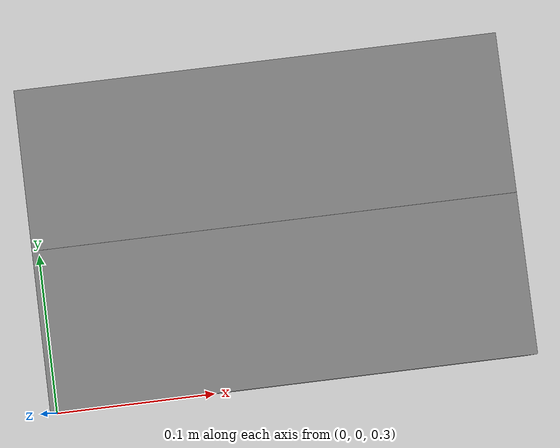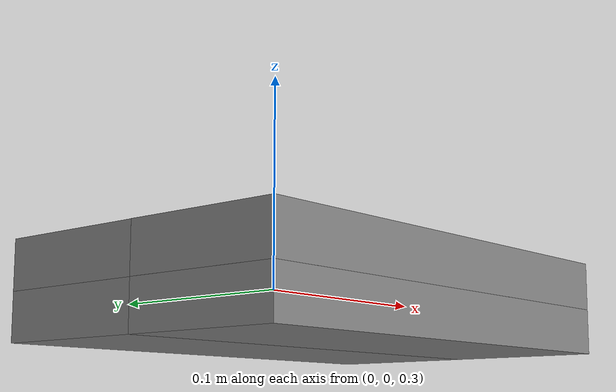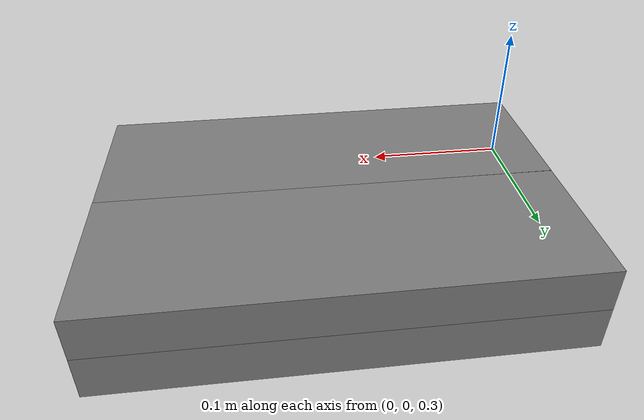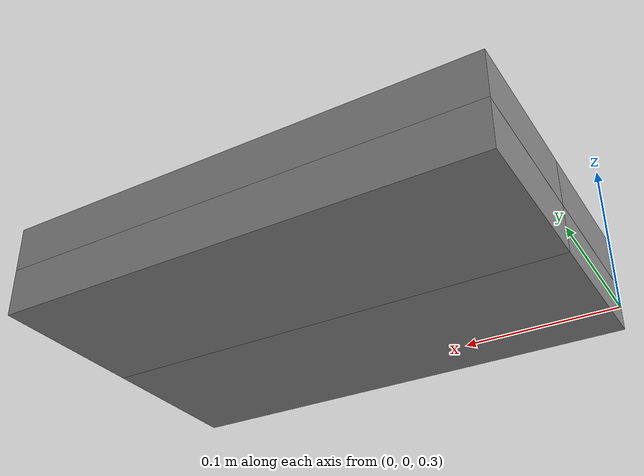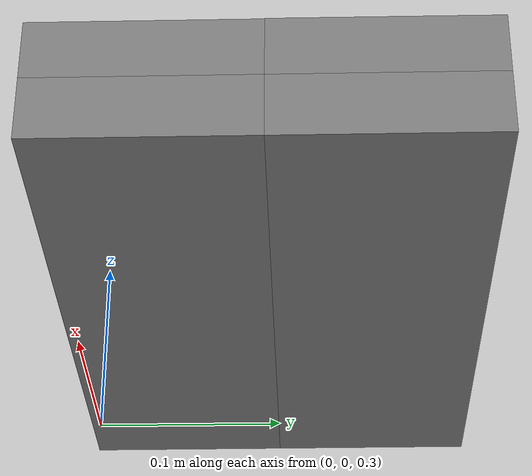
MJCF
<mujoco model='jenga'>
    <compiler coordinate='local' angle='radian' />
    <default>
        <joint limited='false'/>
        <geom contype='0' conaffinity='0' />
    </default>

    <asset>
        <material name="geom" rgba=".9 .9 .9 1"/>
    </asset>

    <worldbody>
        <body pos='.15 .05 0.3'>
            <freejoint/>
            <geom type='box' size='.15 .05 .015' />
            <geom type='box' size='.15 .05 .015'  quat='1 -0.1e-03  1.6e-03 0' pos='0 0 .029'/>

        </body>
        <body pos='.15 .15 0.3'>
            <freejoint/>
            <geom type='box' size='.15 .05 .015' />
            <geom type='box' size='.15 .05 .015'  quat='1 -0.8e-03  1.0e-03 0' pos='0 0 .029'/>
        </body>
    </worldbody>
</mujoco>
